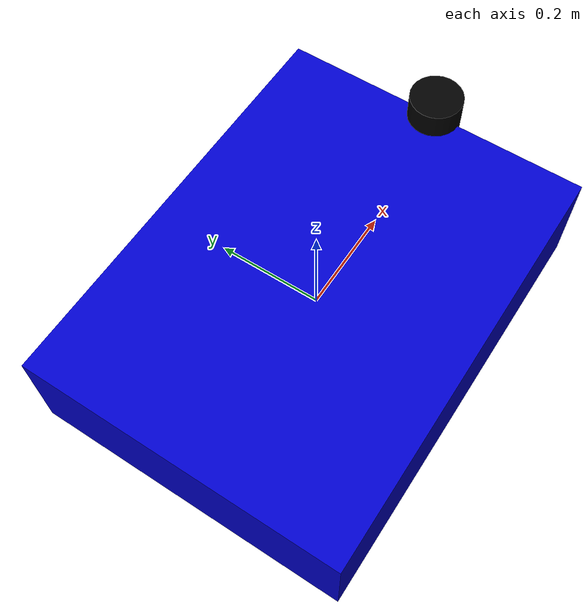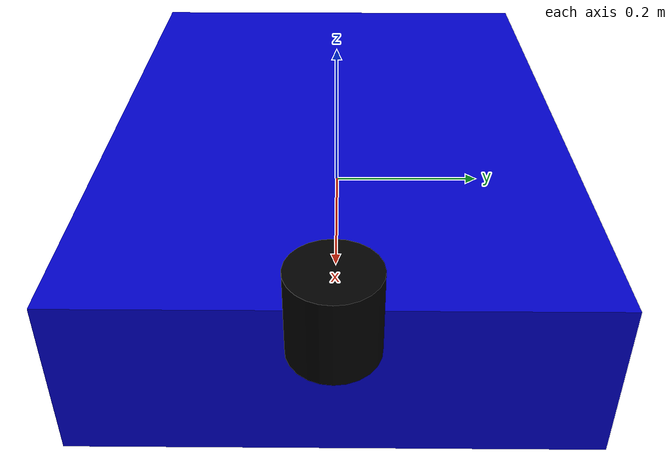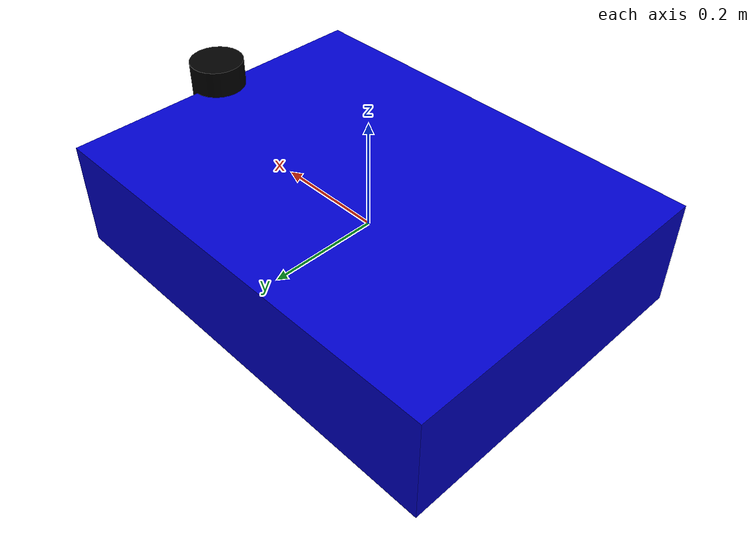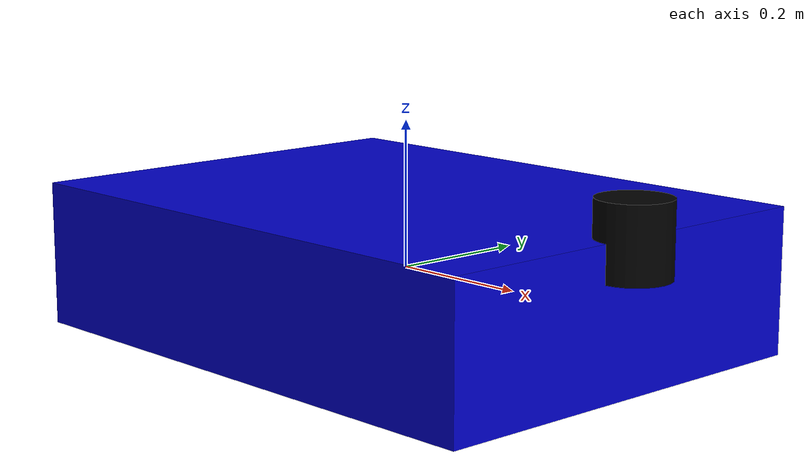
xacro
<?xml version="1.0"?>
<robot name="agv" xmlns:xacro="http://www.ros.org/wiki/xacro">

  <!-- Properties -->
  <xacro:property name="base_width" value="0.6"/>
  <xacro:property name="base_length" value="0.8"/>
  <xacro:property name="base_height" value="0.2"/>
  <xacro:property name="wheel_radius" value="0.1"/>
  <xacro:property name="wheel_width" value="0.05"/>
  <xacro:property name="wheel_separation" value="0.5"/>

  <!-- Gazebo Material Colors -->
  <gazebo reference="base_link">
    <material>Gazebo/Blue</material>
  </gazebo>

  <!-- Base Link -->
  <link name="base_link">
    <visual>
      <geometry>
        <box size="${base_length} ${base_width} ${base_height}"/>
      </geometry>
      <material name="blue">
        <color rgba="0 0 0.8 1"/>
      </material>
    </visual>
    <collision>
      <geometry>
        <box size="${base_length} ${base_width} ${base_height}"/>
      </geometry>
    </collision>
    <inertial>
      <mass value="50"/>
      <inertia ixx="1.0" ixy="0.0" ixz="0.0" iyy="1.0" iyz="0.0" izz="1.0"/>
    </inertial>
  </link>

  <!-- Wheel Macro -->
  <xacro:macro name="wheel" params="prefix x y">
    <link name="${prefix}_wheel">
      <visual>
        <geometry>
          <cylinder radius="${wheel_radius}" length="${wheel_width}"/>
        </geometry>
        <material name="black">
          <color rgba="0 0 0 1"/>
        </material>
      </visual>
      <collision>
        <geometry>
          <cylinder radius="${wheel_radius}" length="${wheel_width}"/>
        </geometry>
      </collision>
      <inertial>
        <mass value="5"/>
        <inertia ixx="0.1" ixy="0.0" ixz="0.0" iyy="0.1" iyz="0.0" izz="0.1"/>
      </inertial>
    </link>

    <joint name="${prefix}_wheel_joint" type="continuous">
      <parent link="base_link"/>
      <child link="${prefix}_wheel"/>
      <origin xyz="${x} ${y} 0" rpy="${pi/2} 0 0"/>
      <axis xyz="0 0 1"/>
    </joint>

    <gazebo reference="${prefix}_wheel">
      <material>Gazebo/Black</material>
    </gazebo>
  </xacro:macro>

  <!-- Create wheels -->
  <xacro:wheel prefix="left" x="0" y="${wheel_separation/2}"/>
  <xacro:wheel prefix="right" x="0" y="${-wheel_separation/2}"/>

  <!-- Gazebo plugin for differential drive -->
  <gazebo>
    <plugin name="differential_drive_controller" filename="libgazebo_ros_diff_drive.so">
      <robotNamespace>/agv</robotNamespace>
      <leftJoint>left_wheel_joint</leftJoint>
      <rightJoint>right_wheel_joint</rightJoint>
      <wheelSeparation>${wheel_separation}</wheelSeparation>
      <wheelDiameter>${2*wheel_radius}</wheelDiameter>
      <robotBaseFrame>base_link</robotBaseFrame>
      <commandTopic>cmd_vel</commandTopic>
      <odometryTopic>odom</odometryTopic>
      <odometryFrame>odom</odometryFrame>
      <publishWheelTF>true</publishWheelTF>
      <publishOdomTF>true</publishOdomTF>
      <publishWheelJointState>true</publishWheelJointState>
      <wheelAcceleration>1.0</wheelAcceleration>
      <wheelTorque>20</wheelTorque>
      <updateRate>50.0</updateRate>
      <legacyMode>false</legacyMode>
      <odometryFrame>odom</odometryFrame>
      <commandTopic>cmd_vel</commandTopic>
      <odometryTopic>odom</odometryTopic>
      <robotNamespace>/</robotNamespace>
    </plugin>
  </gazebo>

  <!-- Add a laser scanner -->
  <link name="laser">
    <visual>
      <geometry>
        <cylinder radius="0.05" length="0.1"/>
      </geometry>
      <material name="black"/>
    </visual>
    <collision>
      <geometry>
        <cylinder radius="0.05" length="0.1"/>
      </geometry>
    </collision>
    <inertial>
      <mass value="0.1"/>
      <inertia ixx="0.01" ixy="0" ixz="0" iyy="0.01" iyz="0" izz="0.01"/>
    </inertial>
  </link>

  <joint name="laser_joint" type="fixed">
    <parent link="base_link"/>
    <child link="laser"/>
    <origin xyz="${base_length/2} 0 ${base_height/2}" rpy="0 0 0"/>
  </joint>

  <gazebo reference="laser">
    <sensor type="ray" name="laser">
      <pose>0 0 0 0 0 0</pose>
      <visualize>true</visualize>
      <update_rate>10</update_rate>
      <ray>
        <scan>
          <horizontal>
            <samples>360</samples>
            <resolution>1</resolution>
            <min_angle>-3.14159</min_angle>
            <max_angle>3.14159</max_angle>
          </horizontal>
        </scan>
        <range>
          <min>0.10</min>
          <max>10.0</max>
          <resolution>0.01</resolution>
        </range>
      </ray>
      <plugin name="laser_controller" filename="libgazebo_ros_laser.so">
        <topicName>scan</topicName>
        <frameName>laser</frameName>
      </plugin>
    </sensor>
  </gazebo>

</robot>
